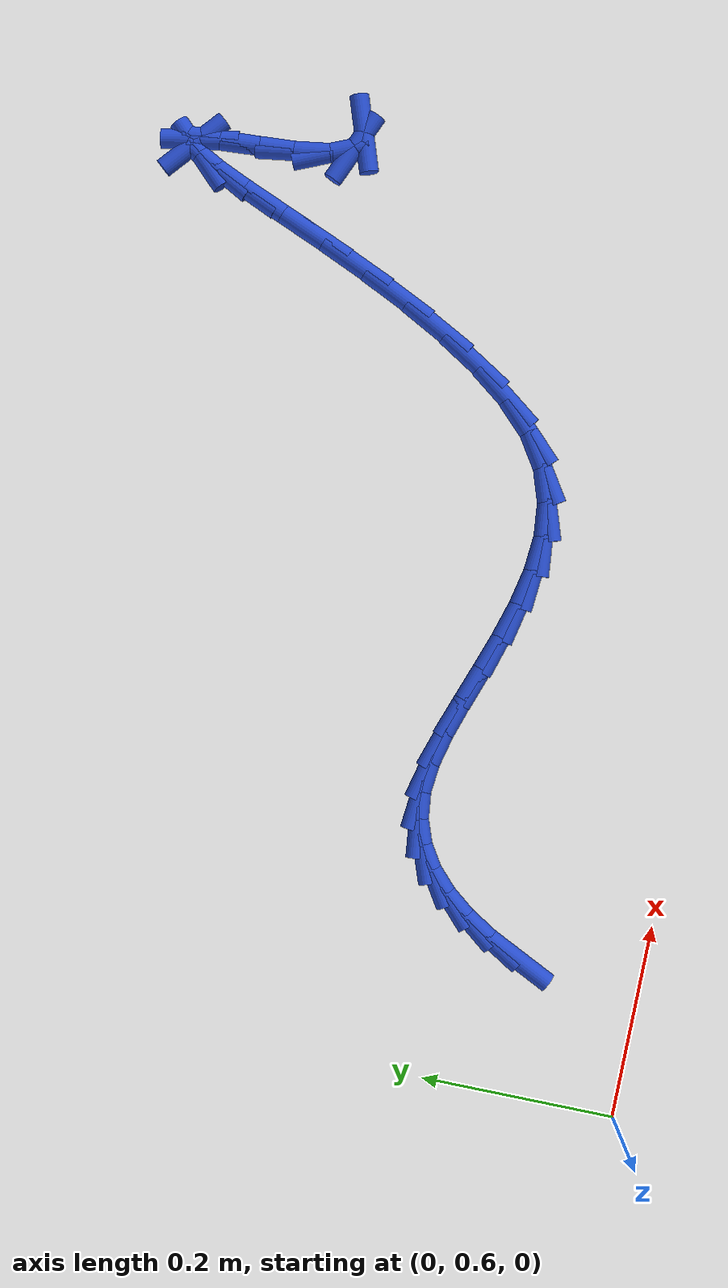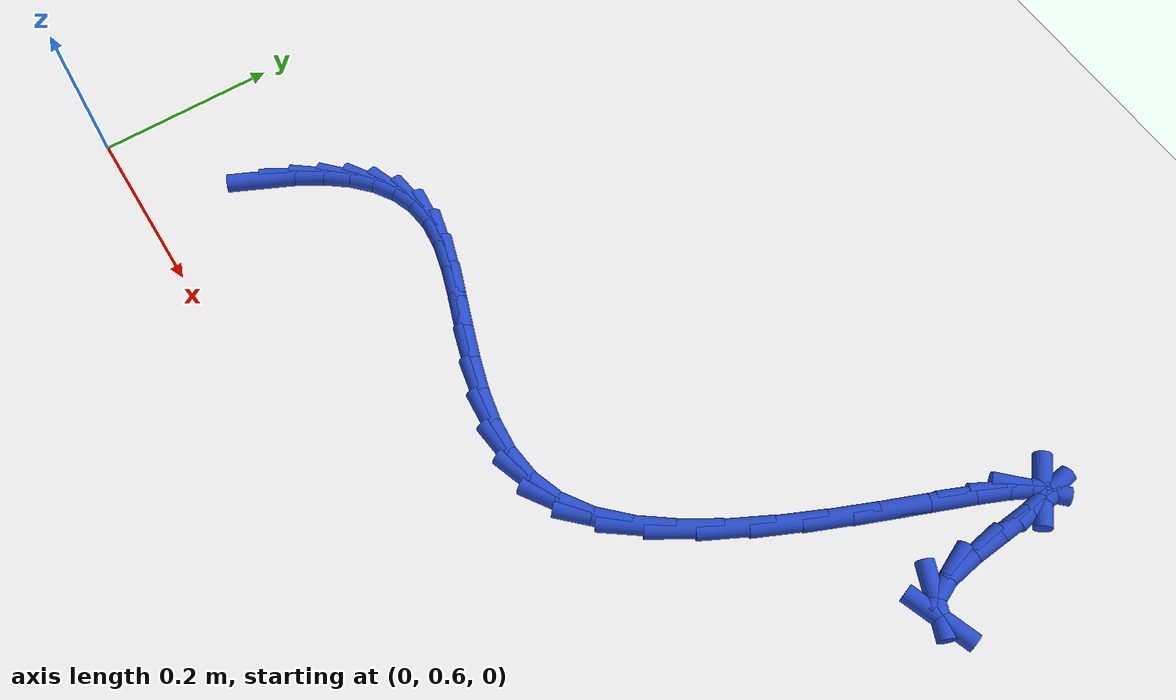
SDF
<sdf version="1.6">
 <world name="default">
  <model name="ground_plane">
   <static>1</static>
   <link name="link">
    <collision name="collision">
     <geometry><plane><normal>0 0 1</normal><size>100 100</size></plane></geometry>
     <surface><friction><ode><mu>100</mu><mu2>50</mu2></ode></friction></surface>
    </collision>
    <visual name="visual">
     <cast_shadows>0</cast_shadows>
     <geometry><plane><normal>0 0 1</normal><size>100 100</size></plane></geometry>
     <material>
      <script><uri>file://media/materials/scripts/gazebo.material</uri><name>Gazebo/WhiteGlow</name></script>
     </material>
    </visual>
   </link>
  </model>
  <model name="line">
   <link name="link_19">
    <pose>0.14086819762561512 0.7303743656482482 0.01 0 1.57 1.1221075758826076</pose>
    <collision name="collision">
     <geometry><cylinder><radius>0.01</radius><length>0.08</length></cylinder></geometry>
    </collision>
    <visual name="visual">
     <material>
      <script><name>Gazebo/Blue</name><uri>file://media/materials/scripts/gazebo.material</uri></script>
     </material>
     <geometry><cylinder><radius>0.01</radius><length>0.08</length></cylinder></geometry>
    </visual>
   </link>
   <link name="link_20">
    <pose>0.15616673601065204 0.7621510653542103 0.01 0 1.57 1.0283174920021094</pose>
    <collision name="collision">
     <geometry><cylinder><radius>0.01</radius><length>0.08</length></cylinder></geometry>
    </collision>
    <visual name="visual">
     <material>
      <script><name>Gazebo/Blue</name><uri>file://media/materials/scripts/gazebo.material</uri></script>
     </material>
     <geometry><cylinder><radius>0.01</radius><length>0.08</length></cylinder></geometry>
    </visual>
   </link>
   <link name="link_21">
    <pose>0.173153862594958 0.7903312399550055 0.01 0 1.57 0.9078171462795516</pose>
    <collision name="collision">
     <geometry><cylinder><radius>0.01</radius><length>0.08</length></cylinder></geometry>
    </collision>
    <visual name="visual">
     <material>
      <script><name>Gazebo/Blue</name><uri>file://media/materials/scripts/gazebo.material</uri></script>
     </material>
     <geometry><cylinder><radius>0.01</radius><length>0.08</length></cylinder></geometry>
    </visual>
   </link>
   <link name="link_22">
    <pose>0.19198419123606292 0.8144451832258341 0.01 0 1.57 0.7544687092185683</pose>
    <collision name="collision">
     <geometry><cylinder><radius>0.01</radius><length>0.08</length></cylinder></geometry>
    </collision>
    <visual name="visual">
     <material>
      <script><name>Gazebo/Blue</name><uri>file://media/materials/scripts/gazebo.material</uri></script>
     </material>
     <geometry><cylinder><radius>0.01</radius><length>0.08</length></cylinder></geometry>
    </visual>
   </link>
   <link name="link_23">
    <pose>0.2128123357914965 0.8340231889418955 0.01 0 1.57 0.5651281748237728</pose>
    <collision name="collision">
     <geometry><cylinder><radius>0.01</radius><length>0.08</length></cylinder></geometry>
    </collision>
    <visual name="visual">
     <material>
      <script><name>Gazebo/Blue</name><uri>file://media/materials/scripts/gazebo.material</uri></script>
     </material>
     <geometry><cylinder><radius>0.01</radius><length>0.08</length></cylinder></geometry>
    </visual>
   </link>
   <link name="link_24">
    <pose>0.23579291011878845 0.8485955508783887 0.01 0 1.57 0.345326940844086</pose>
    <collision name="collision">
     <geometry><cylinder><radius>0.01</radius><length>0.08</length></cylinder></geometry>
    </collision>
    <visual name="visual">
     <material>
      <script><name>Gazebo/Blue</name><uri>file://media/materials/scripts/gazebo.material</uri></script>
     </material>
     <geometry><cylinder><radius>0.01</radius><length>0.08</length></cylinder></geometry>
    </visual>
   </link>
   <link name="link_25">
    <pose>0.2610805280754685 0.8576925628105132 0.01 0 1.57 0.11310220264081204</pose>
    <collision name="collision">
     <geometry><cylinder><radius>0.01</radius><length>0.08</length></cylinder></geometry>
    </collision>
    <visual name="visual">
     <material>
      <script><name>Gazebo/Blue</name><uri>file://media/materials/scripts/gazebo.material</uri></script>
     </material>
     <geometry><cylinder><radius>0.01</radius><length>0.08</length></cylinder></geometry>
    </visual>
   </link>
   <link name="link_26">
    <pose>0.2888298035190664 0.8608445185134688 0.01 0 1.57 -0.09740739574681635</pose>
    <collision name="collision">
     <geometry><cylinder><radius>0.01</radius><length>0.08</length></cylinder></geometry>
    </collision>
    <visual name="visual">
     <material>
      <script><name>Gazebo/Blue</name><uri>file://media/materials/scripts/gazebo.material</uri></script>
     </material>
     <geometry><cylinder><radius>0.01</radius><length>0.08</length></cylinder></geometry>
    </visual>
   </link>
   <link name="link_27">
    <pose>0.31910952958864747 0.8578856853272954 0.01 0 1.57 -0.23689055770752723</pose>
    <collision name="collision">
     <geometry><cylinder><radius>0.01</radius><length>0.08</length></cylinder></geometry>
    </collision>
    <visual name="visual">
     <material>
      <script><name>Gazebo/Blue</name><uri>file://media/materials/scripts/gazebo.material</uri></script>
     </material>
     <geometry><cylinder><radius>0.01</radius><length>0.08</length></cylinder></geometry>
    </visual>
   </link>
   <link name="link_28">
    <pose>0.3515953520328002 0.8500428429821543 0.01 0 1.57 -0.3134043362732711</pose>
    <collision name="collision">
     <geometry><cylinder><radius>0.01</radius><length>0.08</length></cylinder></geometry>
    </collision>
    <visual name="visual">
     <material>
      <script><name>Gazebo/Blue</name><uri>file://media/materials/scripts/gazebo.material</uri></script>
     </material>
     <geometry><cylinder><radius>0.01</radius><length>0.08</length></cylinder></geometry>
    </visual>
   </link>
   <link name="link_29">
    <pose>0.38585040437144963 0.8389412850385152 0.01 0 1.57 -0.34365080850688107</pose>
    <collision name="collision">
     <geometry><cylinder><radius>0.01</radius><length>0.08</length></cylinder></geometry>
    </collision>
    <visual name="visual">
     <material>
      <script><name>Gazebo/Blue</name><uri>file://media/materials/scripts/gazebo.material</uri></script>
     </material>
     <geometry><cylinder><radius>0.01</radius><length>0.08</length></cylinder></geometry>
    </visual>
   </link>
   <link name="link_30">
    <pose>0.421437811047149 0.8262063372085358 0.01 0 1.57 -0.3360398405132245</pose>
    <collision name="collision">
     <geometry><cylinder><radius>0.01</radius><length>0.08</length></cylinder></geometry>
    </collision>
    <visual name="visual">
     <material>
      <script><name>Gazebo/Blue</name><uri>file://media/materials/scripts/gazebo.material</uri></script>
     </material>
     <geometry><cylinder><radius>0.01</radius><length>0.08</length></cylinder></geometry>
    </visual>
   </link>
   <link name="link_31">
    <pose>0.45792069650245176 0.813463325204375 0.01 0 1.57 -0.2925318861233845</pose>
    <collision name="collision">
     <geometry><cylinder><radius>0.01</radius><length>0.08</length></cylinder></geometry>
    </collision>
    <visual name="visual">
     <material>
      <script><name>Gazebo/Blue</name><uri>file://media/materials/scripts/gazebo.material</uri></script>
     </material>
     <geometry><cylinder><radius>0.01</radius><length>0.08</length></cylinder></geometry>
    </visual>
   </link>
   <link name="link_32">
    <pose>0.4948621851799112 0.8023375747381903 0.01 0 1.57 -0.2101224769590258</pose>
    <collision name="collision">
     <geometry><cylinder><radius>0.01</radius><length>0.08</length></cylinder></geometry>
    </collision>
    <visual name="visual">
     <material>
      <script><name>Gazebo/Blue</name><uri>file://media/materials/scripts/gazebo.material</uri></script>
     </material>
     <geometry><cylinder><radius>0.01</radius><length>0.08</length></cylinder></geometry>
    </visual>
   </link>
   <link name="link_33">
    <pose>0.5318254015220802 0.7944544115221401 0.01 0 1.57 -0.0823145292716578</pose>
    <collision name="collision">
     <geometry><cylinder><radius>0.01</radius><length>0.08</length></cylinder></geometry>
    </collision>
    <visual name="visual">
     <material>
      <script><name>Gazebo/Blue</name><uri>file://media/materials/scripts/gazebo.material</uri></script>
     </material>
     <geometry><cylinder><radius>0.01</radius><length>0.08</length></cylinder></geometry>
    </visual>
   </link>
   <link name="link_34">
    <pose>0.5683734699715125 0.7914391612683831 0.01 0 1.57 0.09712686248858758</pose>
    <collision name="collision">
     <geometry><cylinder><radius>0.01</radius><length>0.08</length></cylinder></geometry>
    </collision>
    <visual name="visual">
     <material>
      <script><name>Gazebo/Blue</name><uri>file://media/materials/scripts/gazebo.material</uri></script>
     </material>
     <geometry><cylinder><radius>0.01</radius><length>0.08</length></cylinder></geometry>
    </visual>
   </link>
   <link name="link_35">
    <pose>0.6040695149707613 0.7949171496890765 0.01 0 1.57 0.32508200979457447</pose>
    <collision name="collision">
     <geometry><cylinder><radius>0.01</radius><length>0.08</length></cylinder></geometry>
    </collision>
    <visual name="visual">
     <material>
      <script><name>Gazebo/Blue</name><uri>file://media/materials/scripts/gazebo.material</uri></script>
     </material>
     <geometry><cylinder><radius>0.01</radius><length>0.08</length></cylinder></geometry>
    </visual>
   </link>
   <link name="link_36">
    <pose>0.6384766609623798 0.8065137024963789 0.01 0 1.57 0.5771828616528781</pose>
    <collision name="collision">
     <geometry><cylinder><radius>0.01</radius><length>0.08</length></cylinder></geometry>
    </collision>
    <visual name="visual">
     <material>
      <script><name>Gazebo/Blue</name><uri>file://media/materials/scripts/gazebo.material</uri></script>
     </material>
     <geometry><cylinder><radius>0.01</radius><length>0.08</length></cylinder></geometry>
    </visual>
   </link>
   <link name="link_37">
    <pose>0.6711639082527683 0.8277979863464503 0.01 0 1.57 0.7877276035489035</pose>
    <collision name="collision">
     <geometry><cylinder><radius>0.01</radius><length>0.08</length></cylinder></geometry>
    </collision>
    <visual name="visual">
     <material>
      <script><name>Gazebo/Blue</name><uri>file://media/materials/scripts/gazebo.material</uri></script>
     </material>
     <geometry><cylinder><radius>0.01</radius><length>0.08</length></cylinder></geometry>
    </visual>
   </link>
   <link name="link_38">
    <pose>0.7018765675512489 0.8586540665983288 0.01 0 1.57 0.9288717631295644</pose>
    <collision name="collision">
     <geometry><cylinder><radius>0.01</radius><length>0.08</length></cylinder></geometry>
    </collision>
    <visual name="visual">
     <material>
      <script><name>Gazebo/Blue</name><uri>file://media/materials/scripts/gazebo.material</uri></script>
     </material>
     <geometry><cylinder><radius>0.01</radius><length>0.08</length></cylinder></geometry>
    </visual>
   </link>
   <link name="link_39">
    <pose>0.7305627065767368 0.8970281416774734 0.01 0 1.57 1.024009746363108</pose>
    <collision name="collision">
     <geometry><cylinder><radius>0.01</radius><length>0.08</length></cylinder></geometry>
    </collision>
    <visual name="visual">
     <material>
      <script><name>Gazebo/Blue</name><uri>file://media/materials/scripts/gazebo.material</uri></script>
     </material>
     <geometry><cylinder><radius>0.01</radius><length>0.08</length></cylinder></geometry>
    </visual>
   </link>
   <link name="link_40">
    <pose>0.7571815906426184 0.9407593880715843 0.01 0 1.57 1.0894580405173635</pose>
    <collision name="collision">
     <geometry><cylinder><radius>0.01</radius><length>0.08</length></cylinder></geometry>
    </collision>
    <visual name="visual">
     <material>
      <script><name>Gazebo/Blue</name><uri>file://media/materials/scripts/gazebo.material</uri></script>
     </material>
     <geometry><cylinder><radius>0.01</radius><length>0.08</length></cylinder></geometry>
    </visual>
   </link>
   <link name="link_41">
    <pose>0.7816924850622796 0.9876869822683609 0.01 0 1.57 1.1345222314347991</pose>
    <collision name="collision">
     <geometry><cylinder><radius>0.01</radius><length>0.08</length></cylinder></geometry>
    </collision>
    <visual name="visual">
     <material>
      <script><name>Gazebo/Blue</name><uri>file://media/materials/scripts/gazebo.material</uri></script>
     </material>
     <geometry><cylinder><radius>0.01</radius><length>0.08</length></cylinder></geometry>
    </visual>
   </link>
   <link name="link_42">
    <pose>0.8040546551491081 1.0356501007555048 0.01 0 1.57 1.164113733062502</pose>
    <collision name="collision">
     <geometry><cylinder><radius>0.01</radius><length>0.08</length></cylinder></geometry>
    </collision>
    <visual name="visual">
     <material>
      <script><name>Gazebo/Blue</name><uri>file://media/materials/scripts/gazebo.material</uri></script>
     </material>
     <geometry><cylinder><radius>0.01</radius><length>0.08</length></cylinder></geometry>
    </visual>
   </link>
   <link name="link_43">
    <pose>0.824227366216489 1.0824879200207147 0.01 0 1.57 1.1800034588505761</pose>
    <collision name="collision">
     <geometry><cylinder><radius>0.01</radius><length>0.08</length></cylinder></geometry>
    </collision>
    <visual name="visual">
     <material>
      <script><name>Gazebo/Blue</name><uri>file://media/materials/scripts/gazebo.material</uri></script>
     </material>
     <geometry><cylinder><radius>0.01</radius><length>0.08</length></cylinder></geometry>
    </visual>
   </link>
   <link name="link_44">
    <pose>0.8421698835778095 1.126039616551692 0.01 0 1.57 1.1806067709805428</pose>
    <collision name="collision">
     <geometry><cylinder><radius>0.01</radius><length>0.08</length></cylinder></geometry>
    </collision>
    <visual name="visual">
     <material>
      <script><name>Gazebo/Blue</name><uri>file://media/materials/scripts/gazebo.material</uri></script>
     </material>
     <geometry><cylinder><radius>0.01</radius><length>0.08</length></cylinder></geometry>
    </visual>
   </link>
   <link name="link_45">
    <pose>0.8578414725464556 1.1641443668361355 0.01 0 1.57 1.1579044330749586</pose>
    <collision name="collision">
     <geometry><cylinder><radius>0.01</radius><length>0.08</length></cylinder></geometry>
    </collision>
    <visual name="visual">
     <material>
      <script><name>Gazebo/Blue</name><uri>file://media/materials/scripts/gazebo.material</uri></script>
     </material>
     <geometry><cylinder><radius>0.01</radius><length>0.08</length></cylinder></geometry>
    </visual>
   </link>
   <link name="link_46">
    <pose>0.8712013984358135 1.1946413473617459 0.01 0 1.57 1.0826289765320969</pose>
    <collision name="collision">
     <geometry><cylinder><radius>0.01</radius><length>0.08</length></cylinder></geometry>
    </collision>
    <visual name="visual">
     <material>
      <script><name>Gazebo/Blue</name><uri>file://media/materials/scripts/gazebo.material</uri></script>
     </material>
     <geometry><cylinder><radius>0.01</radius><length>0.08</length></cylinder></geometry>
    </visual>
   </link>
   <link name="link_47">
    <pose>0.8822089265592699 1.2153697346162229 0.01 0 1.57 0.7959973713069253</pose>
    <collision name="collision">
     <geometry><cylinder><radius>0.01</radius><length>0.08</length></cylinder></geometry>
    </collision>
    <visual name="visual">
     <material>
      <script><name>Gazebo/Blue</name><uri>file://media/materials/scripts/gazebo.material</uri></script>
     </material>
     <geometry><cylinder><radius>0.01</radius><length>0.08</length></cylinder></geometry>
    </visual>
   </link>
   <link name="link_48">
    <pose>0.890823322230211 1.224168705087267 0.01 0 1.57 -0.7080359290475473</pose>
    <collision name="collision">
     <geometry><cylinder><radius>0.01</radius><length>0.08</length></cylinder></geometry>
    </collision>
    <visual name="visual">
     <material>
      <script><name>Gazebo/Blue</name><uri>file://media/materials/scripts/gazebo.material</uri></script>
     </material>
     <geometry><cylinder><radius>0.01</radius><length>0.08</length></cylinder></geometry>
    </visual>
   </link>
   <link name="link_49">
    <pose>0.8970038507620233 1.2188774352625782 0.01 0 1.57 -1.3988786667722337</pose>
    <collision name="collision">
     <geometry><cylinder><radius>0.01</radius><length>0.08</length></cylinder></geometry>
    </collision>
    <visual name="visual">
     <material>
      <script><name>Gazebo/Blue</name><uri>file://media/materials/scripts/gazebo.material</uri></script>
     </material>
     <geometry><cylinder><radius>0.01</radius><length>0.08</length></cylinder></geometry>
    </visual>
   </link>
   <link name="link_50">
    <pose>0.9007281348322297 1.1974280953967282 0.01 0 1.57 -1.510663499018459</pose>
    <collision name="collision">
     <geometry><cylinder><radius>0.01</radius><length>0.08</length></cylinder></geometry>
    </collision>
    <visual name="visual">
     <material>
      <script><name>Gazebo/Blue</name><uri>file://media/materials/scripts/gazebo.material</uri></script>
     </material>
     <geometry><cylinder><radius>0.01</radius><length>0.08</length></cylinder></geometry>
    </visual>
   </link>
   <link name="link_51">
    <pose>0.9028496704141361 1.1621898084827669 0.01 0 1.57 -1.5061326454913322</pose>
    <collision name="collision">
     <geometry><cylinder><radius>0.01</radius><length>0.08</length></cylinder></geometry>
    </collision>
    <visual name="visual">
     <material>
      <script><name>Gazebo/Blue</name><uri>file://media/materials/scripts/gazebo.material</uri></script>
     </material>
     <geometry><cylinder><radius>0.01</radius><length>0.08</length></cylinder></geometry>
    </visual>
   </link>
   <link name="link_52">
    <pose>0.9054636557636966 1.1218218474360009 0.01 0 1.57 -1.4261619346519163</pose>
    <collision name="collision">
     <geometry><cylinder><radius>0.01</radius><length>0.08</length></cylinder></geometry>
    </collision>
    <visual name="visual">
     <material>
      <script><name>Gazebo/Blue</name><uri>file://media/materials/scripts/gazebo.material</uri></script>
     </material>
     <geometry><cylinder><radius>0.01</radius><length>0.08</length></cylinder></geometry>
    </visual>
   </link>
   <link name="link_53">
    <pose>0.9107596176778908 1.085461329718922 0.01 0 1.57 -1.1622807201396543</pose>
    <collision name="collision">
     <geometry><cylinder><radius>0.01</radius><length>0.08</length></cylinder></geometry>
    </collision>
    <visual name="visual">
     <material>
      <script><name>Gazebo/Blue</name><uri>file://media/materials/scripts/gazebo.material</uri></script>
     </material>
     <geometry><cylinder><radius>0.01</radius><length>0.08</length></cylinder></geometry>
    </visual>
   </link>
   <link name="link_54">
    <pose>0.9208852109740544 1.0620694318032669 0.01 0 1.57 -0.406060123291478</pose>
    <collision name="collision">
     <geometry><cylinder><radius>0.01</radius><length>0.08</length></cylinder></geometry>
    </collision>
    <visual name="visual">
     <material>
      <script><name>Gazebo/Blue</name><uri>file://media/materials/scripts/gazebo.material</uri></script>
     </material>
     <geometry><cylinder><radius>0.01</radius><length>0.08</length></cylinder></geometry>
    </visual>
   </link>
   <link name="link_55">
    <pose>0.9367161606544918 1.0552628350177926 0.01 0 1.57 0.3316702548695326</pose>
    <collision name="collision">
     <geometry><cylinder><radius>0.01</radius><length>0.08</length></cylinder></geometry>
    </collision>
    <visual name="visual">
     <material>
      <script><name>Gazebo/Blue</name><uri>file://media/materials/scripts/gazebo.material</uri></script>
     </material>
     <geometry><cylinder><radius>0.01</radius><length>0.08</length></cylinder></geometry>
    </visual>
   </link>
  </model>
 </world>
</sdf>
